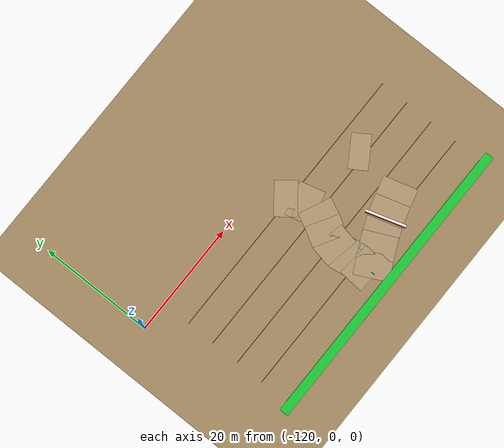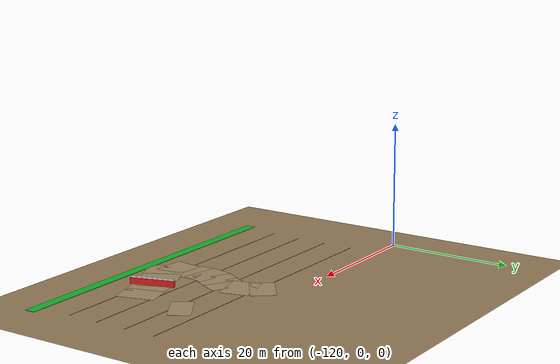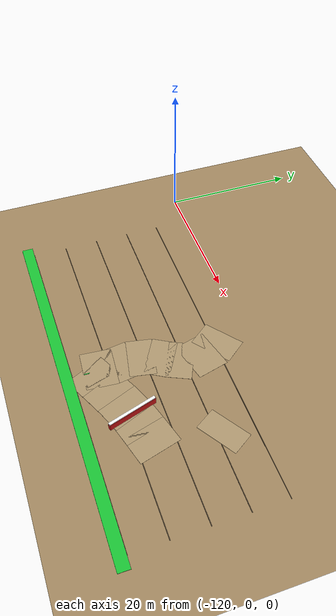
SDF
<sdf version="1.6">
 <world name="navitas_arena">
  <model name="ground_plane">
   <static>true</static>
   <link name="link">
    <collision name="collision">
     <geometry><plane><normal>0 0 1</normal><size>400 400</size></plane></geometry>
     <surface><friction><ode><mu>0.800</mu><mu2>0.800</mu2></ode></friction></surface>
    </collision>
    <visual name="visual">
     <cast_shadows>false</cast_shadows>
     <geometry><plane><normal>0 0 1</normal><size>400 400</size></plane></geometry>
     <material>
      <ambient>0.62 0.52 0.37 1</ambient>
      <diffuse>0.62 0.52 0.37 1</diffuse>
      <specular>0.04 0.04 0.04 1</specular>
     </material>
    </visual>
   </link>
  </model>
  <model name="grid_kolay_h0">
   <static>true</static>
   <pose>-90.000 -25.000 0.015 0 0 0.000</pose>
   <link name="link">
    <collision name="col"><geometry><box><size>50.000 0.100 0.006</size></box></geometry></collision>
    <visual name="vis">
     <geometry><box><size>50.000 0.100 0.006</size></box></geometry>
     <material>
      <ambient>0.30 0.24 0.17 1</ambient>
      <diffuse>0.30 0.24 0.17 1</diffuse>
      <specular>0.04 0.04 0.04 1</specular>
     </material>
    </visual>
   </link>
  </model>
  <model name="grid_kolay_h1">
   <static>true</static>
   <pose>-90.000 -20.000 0.015 0 0 0.000</pose>
   <link name="link">
    <collision name="col"><geometry><box><size>50.000 0.100 0.006</size></box></geometry></collision>
    <visual name="vis">
     <geometry><box><size>50.000 0.100 0.006</size></box></geometry>
     <material>
      <ambient>0.30 0.24 0.17 1</ambient>
      <diffuse>0.30 0.24 0.17 1</diffuse>
      <specular>0.04 0.04 0.04 1</specular>
     </material>
    </visual>
   </link>
  </model>
  <model name="grid_kolay_h2">
   <static>true</static>
   <pose>-90.000 -15.000 0.015 0 0 0.000</pose>
   <link name="link">
    <collision name="col"><geometry><box><size>50.000 0.100 0.006</size></box></geometry></collision>
    <visual name="vis">
     <geometry><box><size>50.000 0.100 0.006</size></box></geometry>
     <material>
      <ambient>0.30 0.24 0.17 1</ambient>
      <diffuse>0.30 0.24 0.17 1</diffuse>
      <specular>0.04 0.04 0.04 1</specular>
     </material>
    </visual>
   </link>
  </model>
  <model name="grid_kolay_h3">
   <static>true</static>
   <pose>-90.000 -10.000 0.015 0 0 0.000</pose>
   <link name="link">
    <collision name="col"><geometry><box><size>50.000 0.100 0.006</size></box></geometry></collision>
    <visual name="vis">
     <geometry><box><size>50.000 0.100 0.006</size></box></geometry>
     <material>
      <ambient>0.30 0.24 0.17 1</ambient>
      <diffuse>0.30 0.24 0.17 1</diffuse>
      <specular>0.04 0.04 0.04 1</specular>
     </material>
    </visual>
   </link>
  </model>
  <model name="grid_kolay_h4">
   <static>true</static>
   <pose>-90.000 -5.000 0.015 0 0 0.000</pose>
   <link name="link">
    <collision name="col"><geometry><box><size>50.000 0.100 0.006</size></box></geometry></collision>
    <visual name="vis">
     <geometry><box><size>50.000 0.100 0.006</size></box></geometry>
     <material>
      <ambient>0.30 0.24 0.17 1</ambient>
      <diffuse>0.30 0.24 0.17 1</diffuse>
      <specular>0.04 0.04 0.04 1</specular>
     </material>
    </visual>
   </link>
  </model>
  <model name="brd_kolay_S">
   <static>true</static>
   <pose>-90.000 -25.800 0.040 0 0 0.000</pose>
   <link name="link">
    <collision name="col"><geometry><box><size>53.200 1.600 0.080</size></box></geometry></collision>
    <visual name="vis">
     <geometry><box><size>53.200 1.600 0.080</size></box></geometry>
     <material>
      <ambient>0.10 0.75 0.20 1</ambient>
      <diffuse>0.10 0.75 0.20 1</diffuse>
      <specular>0.04 0.04 0.04 1</specular>
     </material>
    </visual>
   </link>
  </model>
  <model name="road_kolay_2_0">
   <static>true</static>
   <pose>-90.490 -21.250 0.040 0 0 1.490</pose>
   <link name="link">
    <collision name="col"><geometry><box><size>4.412 6.000 0.020</size></box></geometry></collision>
    <visual name="vis">
     <geometry><box><size>4.412 6.000 0.020</size></box></geometry>
     <material>
      <ambient>0.67 0.58 0.43 1</ambient>
      <diffuse>0.67 0.58 0.43 1</diffuse>
      <specular>0.04 0.04 0.04 1</specular>
     </material>
    </visual>
   </link>
  </model>
  <model name="road_kolay_2_1">
   <static>true</static>
   <pose>-90.547 -18.111 0.040 0 0 1.713</pose>
   <link name="link">
    <collision name="col"><geometry><box><size>3.706 6.000 0.020</size></box></geometry></collision>
    <visual name="vis">
     <geometry><box><size>3.706 6.000 0.020</size></box></geometry>
     <material>
      <ambient>0.67 0.58 0.43 1</ambient>
      <diffuse>0.67 0.58 0.43 1</diffuse>
      <specular>0.04 0.04 0.04 1</specular>
     </material>
    </visual>
   </link>
  </model>
  <model name="road_kolay_2_2">
   <static>true</static>
   <pose>-90.478 -15.350 0.040 0 0 1.378</pose>
   <link name="link">
    <collision name="col"><geometry><box><size>3.696 6.000 0.020</size></box></geometry></collision>
    <visual name="vis">
     <geometry><box><size>3.696 6.000 0.020</size></box></geometry>
     <material>
      <ambient>0.67 0.58 0.43 1</ambient>
      <diffuse>0.67 0.58 0.43 1</diffuse>
      <specular>0.04 0.04 0.04 1</specular>
     </material>
    </visual>
   </link>
  </model>
  <model name="road_kolay_2_3">
   <static>true</static>
   <pose>-89.535 -12.817 0.040 0 0 1.043</pose>
   <link name="link">
    <collision name="col"><geometry><box><size>3.587 6.000 0.020</size></box></geometry></collision>
    <visual name="vis">
     <geometry><box><size>3.587 6.000 0.020</size></box></geometry>
     <material>
      <ambient>0.67 0.58 0.43 1</ambient>
      <diffuse>0.67 0.58 0.43 1</diffuse>
      <specular>0.04 0.04 0.04 1</specular>
     </material>
    </visual>
   </link>
  </model>
  <model name="road_kolay_2_4">
   <static>true</static>
   <pose>-88.283 -10.426 0.040 0 0 1.133</pose>
   <link name="link">
    <collision name="col"><geometry><box><size>3.617 6.000 0.020</size></box></geometry></collision>
    <visual name="vis">
     <geometry><box><size>3.617 6.000 0.020</size></box></geometry>
     <material>
      <ambient>0.67 0.58 0.43 1</ambient>
      <diffuse>0.67 0.58 0.43 1</diffuse>
      <specular>0.04 0.04 0.04 1</specular>
     </material>
    </visual>
   </link>
  </model>
  <model name="road_kolay_2_5">
   <static>true</static>
   <pose>-88.152 -7.431 0.040 0 0 1.818</pose>
   <link name="link">
    <collision name="col"><geometry><box><size>4.540 6.000 0.020</size></box></geometry></collision>
    <visual name="vis">
     <geometry><box><size>4.540 6.000 0.020</size></box></geometry>
     <material>
      <ambient>0.67 0.58 0.43 1</ambient>
      <diffuse>0.67 0.58 0.43 1</diffuse>
      <specular>0.04 0.04 0.04 1</specular>
     </material>
    </visual>
   </link>
  </model>
  <model name="road_kolay_2_6">
   <static>true</static>
   <pose>-89.501 -4.500 0.040 0 0 2.229</pose>
   <link name="link">
    <collision name="col"><geometry><box><size>3.850 6.000 0.020</size></box></geometry></collision>
    <visual name="vis">
     <geometry><box><size>3.850 6.000 0.020</size></box></geometry>
     <material>
      <ambient>0.67 0.58 0.43 1</ambient>
      <diffuse>0.67 0.58 0.43 1</diffuse>
      <specular>0.04 0.04 0.04 1</specular>
     </material>
    </visual>
   </link>
  </model>
  <model name="road_kolay_3_0">
   <static>true</static>
   <pose>-89.138 -22.266 0.040 0 0 0.457</pose>
   <link name="link">
    <collision name="col"><geometry><box><size>4.229 6.000 0.020</size></box></geometry></collision>
    <visual name="vis">
     <geometry><box><size>4.229 6.000 0.020</size></box></geometry>
     <material>
      <ambient>0.67 0.58 0.43 1</ambient>
      <diffuse>0.67 0.58 0.43 1</diffuse>
      <specular>0.04 0.04 0.04 1</specular>
     </material>
    </visual>
   </link>
  </model>
  <model name="road_kolay_3_1">
   <static>true</static>
   <pose>-86.196 -20.856 0.040 0 0 0.436</pose>
   <link name="link">
    <collision name="col"><geometry><box><size>4.096 6.000 0.020</size></box></geometry></collision>
    <visual name="vis">
     <geometry><box><size>4.096 6.000 0.020</size></box></geometry>
     <material>
      <ambient>0.67 0.58 0.43 1</ambient>
      <diffuse>0.67 0.58 0.43 1</diffuse>
      <specular>0.04 0.04 0.04 1</specular>
     </material>
    </visual>
   </link>
  </model>
  <model name="road_kolay_3_2">
   <static>true</static>
   <pose>-83.397 -19.642 0.040 0 0 0.380</pose>
   <link name="link">
    <collision name="col"><geometry><box><size>3.808 6.000 0.020</size></box></geometry></collision>
    <visual name="vis">
     <geometry><box><size>3.808 6.000 0.020</size></box></geometry>
     <material>
      <ambient>0.67 0.58 0.43 1</ambient>
      <diffuse>0.67 0.58 0.43 1</diffuse>
      <specular>0.04 0.04 0.04 1</specular>
     </material>
    </visual>
   </link>
  </model>
  <model name="road_kolay_3_3">
   <static>true</static>
   <pose>-80.676 -18.702 0.040 0 0 0.284</pose>
   <link name="link">
    <collision name="col"><geometry><box><size>3.755 6.000 0.020</size></box></geometry></collision>
    <visual name="vis">
     <geometry><box><size>3.755 6.000 0.020</size></box></geometry>
     <material>
      <ambient>0.67 0.58 0.43 1</ambient>
      <diffuse>0.67 0.58 0.43 1</diffuse>
      <specular>0.04 0.04 0.04 1</specular>
     </material>
    </visual>
   </link>
  </model>
  <model name="road_kolay_3_4">
   <static>true</static>
   <pose>-77.800 -17.886 0.040 0 0 0.270</pose>
   <link name="link">
    <collision name="col"><geometry><box><size>4.026 6.000 0.020</size></box></geometry></collision>
    <visual name="vis">
     <geometry><box><size>4.026 6.000 0.020</size></box></geometry>
     <material>
      <ambient>0.67 0.58 0.43 1</ambient>
      <diffuse>0.67 0.58 0.43 1</diffuse>
      <specular>0.04 0.04 0.04 1</specular>
     </material>
    </visual>
   </link>
  </model>
  <model name="road_kolay_3_9">
   <static>true</static>
   <pose>-76.035 -9.036 0.040 0 0 2.138</pose>
   <link name="link">
    <collision name="col"><geometry><box><size>3.358 6.000 0.020</size></box></geometry></collision>
    <visual name="vis">
     <geometry><box><size>3.358 6.000 0.020</size></box></geometry>
     <material>
      <ambient>0.67 0.58 0.43 1</ambient>
      <diffuse>0.67 0.58 0.43 1</diffuse>
      <specular>0.04 0.04 0.04 1</specular>
     </material>
    </visual>
   </link>
  </model>
  <model name="bar_kolay_3">
   <static>true</static>
   <pose>-82.047 -19.102 0.500 0 0 1.867</pose>
   <link name="link">
    <collision name="col"><geometry><box><size>7.000 0.500 1.000</size></box></geometry></collision>
    <visual name="vis">
     <geometry><box><size>7.000 0.500 1.000</size></box></geometry>
     <material>
      <ambient>0.85 0.10 0.10 1</ambient>
      <diffuse>0.85 0.10 0.10 1</diffuse>
      <specular>0.04 0.04 0.04 1</specular>
     </material>
    </visual>
   </link>
  </model>
  <model name="bar_kolay_3b">
   <static>true</static>
   <pose>-82.047 -19.102 1.000 0 0 1.867</pose>
   <link name="link">
    <collision name="col"><geometry><box><size>7.000 0.400 0.300</size></box></geometry></collision>
    <visual name="vis">
     <geometry><box><size>7.000 0.400 0.300</size></box></geometry>
     <material>
      <ambient>0.95 0.95 0.95 1</ambient>
      <diffuse>0.95 0.95 0.95 1</diffuse>
      <specular>0.04 0.04 0.04 1</specular>
     </material>
    </visual>
   </link>
  </model>
  <model name="kb_kolay_E">
   <static>true</static>
   <pose>-90.192 -23.000 0.070 0 0 0.000</pose>
   <link name="link">
    <collision name="col"><geometry><box><size>0.120 0.760 0.040</size></box></geometry></collision>
    <visual name="vis">
     <geometry><box><size>0.120 0.760 0.040</size></box></geometry>
     <material>
      <ambient>0.10 0.75 0.20 1</ambient>
      <diffuse>0.10 0.75 0.20 1</diffuse>
      <specular>0.04 0.04 0.04 1</specular>
     </material>
    </visual>
   </link>
  </model>
 </world>
</sdf>
